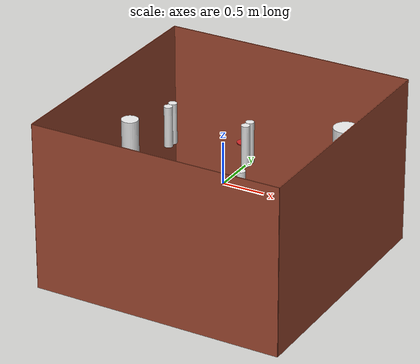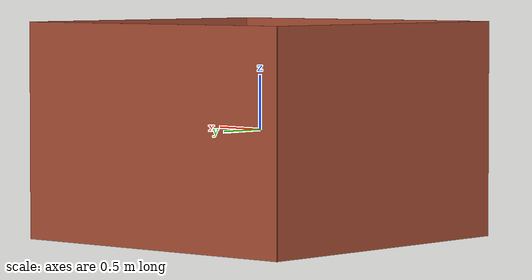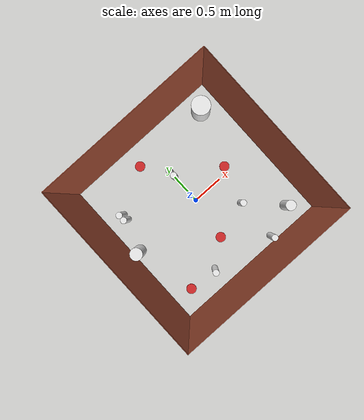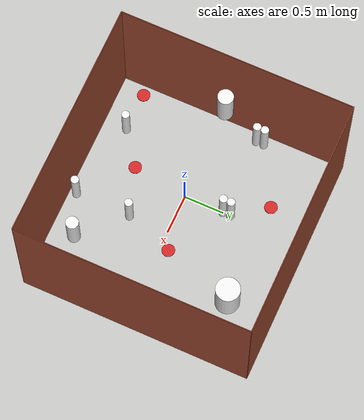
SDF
<sdf version='1.5'>
    <!-- 10 obstacles version -->
    <model name='ros_symbol'>
      <static>1</static>
      <link name='symbol'>
      	<visual name='goal_1'>
          <pose>0.7 0.1 0 0 0 0</pose>
          <geometry>
            <cylinder>
              <radius>0.08</radius>
              <length>0.01</length>
            </cylinder>
          </geometry>
          <material>
            <script>
              <uri>file://media/materials/scripts/gazebo.material</uri>
              <name>Gazebo/Red</name>
            </script>
          </material>
        </visual>

        <visual name='goal_2'>
          <pose>-0.1 -0.7 0 0 0 0</pose>
          <geometry>
            <cylinder>
              <radius>0.08</radius>
              <length>0.01</length>
            </cylinder>
          </geometry>
          <material>
            <script>
              <uri>file://media/materials/scripts/gazebo.material</uri>
              <name>Gazebo/Red</name>
            </script>
          </material>
        </visual>

        <visual name='goal_3'>
          <pose>-1 -1 0 0 0 0</pose>
          <geometry>
            <cylinder>
              <radius>0.08</radius>
              <length>0.01</length>
            </cylinder>
          </geometry>
          <material>
            <script>
              <uri>file://media/materials/scripts/gazebo.material</uri>
              <name>Gazebo/Red</name>
            </script>
          </material>
        </visual>

        <visual name='goal_4'>
          <pose>-0.3 1 0 0 0 0</pose>
          <geometry>
            <cylinder>
              <radius>0.08</radius>
              <length>0.01</length>
            </cylinder>
          </geometry>
          <material>
            <script>
              <uri>file://media/materials/scripts/gazebo.material</uri>
              <name>Gazebo/Red</name>
            </script>
          </material>
        </visual>

        <collision name='obs_1'>
          <pose>0.5 -0.5 0.25 0 0 0</pose>
          <geometry>
            <cylinder>
              <radius>0.05</radius>
              <length>0.5</length>
            </cylinder>
          </geometry>
          <max_contacts>10</max_contacts>
          <surface>
            <bounce/>
            <friction>
              <ode/>
            </friction>
            <contact>
              <ode/>
            </contact>
          </surface>
        </collision>

        <visual name='obs_1'>
          <pose>0.5 -0.5 0.25 0 0 0</pose>
          <geometry>
            <cylinder>
              <radius>0.05</radius>
              <length>0.5</length>
            </cylinder>
          </geometry>
          <material>
            <script>
              <uri>file://media/materials/scripts/gazebo.material</uri>
              <name>Gazebo/White</name>
            </script>
          </material>
        </visual>

        <collision name='obs_2'>
          <pose>0 0.5 0.25 0 0 0</pose>
          <geometry>
            <cylinder>
              <radius>0.05</radius>
              <length>0.5</length>
            </cylinder>
          </geometry>
          <max_contacts>10</max_contacts>
          <surface>
            <bounce/>
            <friction>
              <ode/>
            </friction>
            <contact>
              <ode/>
            </contact>
          </surface>
        </collision>

        <visual name='obs_2'>
          <pose>0 0.5 0.25 0 0 0</pose>
          <geometry>
            <cylinder>
              <radius>0.05</radius>
              <length>0.5</length>
            </cylinder>
          </geometry>
          <material>
            <script>
              <uri>file://media/materials/scripts/gazebo.material</uri>
              <name>Gazebo/White</name>
            </script>
          </material>
        </visual>

        <collision name='obs_3'>
          <pose>-1 0.5 0.25 0 0 0</pose>
          <geometry>
            <cylinder>
              <radius>0.05</radius>
              <length>0.5</length>
            </cylinder>
          </geometry>
          <max_contacts>10</max_contacts>
          <surface>
            <bounce/>
            <friction>
              <ode/>
            </friction>
            <contact>
              <ode/>
            </contact>
          </surface>
        </collision>

        <visual name='obs_3'>
          <pose>-1 0.5 0.25 0 0 0</pose>
          <geometry>
            <cylinder>
              <radius>0.05</radius>
              <length>0.5</length>
            </cylinder>
          </geometry>
          <material>
            <script>
              <uri>file://media/materials/scripts/gazebo.material</uri>
              <name>Gazebo/White</name>
            </script>
          </material>
        </visual>

        <collision name='obs_4'>
          <pose>-0.5 -1 0.25 0 0 0</pose>
          <geometry>
            <cylinder>
              <radius>0.05</radius>
              <length>0.5</length>
            </cylinder>
          </geometry>
          <max_contacts>10</max_contacts>
          <surface>
            <bounce/>
            <friction>
              <ode/>
            </friction>
            <contact>
              <ode/>
            </contact>
          </surface>
        </collision>

        <visual name='obs_4'>
          <pose>-0.5 -1 0.25 0 0 0</pose>
          <geometry>
            <cylinder>
              <radius>0.05</radius>
              <length>0.5</length>
            </cylinder>
          </geometry>
          <material>
            <script>
              <uri>file://media/materials/scripts/gazebo.material</uri>
              <name>Gazebo/White</name>
            </script>
          </material>
        </visual>

        <collision name='obs_5'>
          <pose>1 -1 0.25 0 0 0</pose>
          <geometry>
            <cylinder>
              <radius>0.08</radius>
              <length>0.5</length>
            </cylinder>
          </geometry>
          <max_contacts>10</max_contacts>
          <surface>
            <bounce/>
            <friction>
              <ode/>
            </friction>
            <contact>
              <ode/>
            </contact>
          </surface>
        </collision>

        <visual name='obs_5'>
          <pose>1 -1 0.25 0 0 0</pose>
          <geometry>
            <cylinder>
              <radius>0.08</radius>
              <length>0.5</length>
            </cylinder>
          </geometry>
          <material>
            <script>
              <uri>file://media/materials/scripts/gazebo.material</uri>
              <name>Gazebo/White</name>
            </script>
          </material>
        </visual>

        <collision name='obs_6'>
          <pose>-1 0.6 0.25 0 0 0</pose>
          <geometry>
            <cylinder>
              <radius>0.05</radius>
              <length>0.5</length>
            </cylinder>
          </geometry>
          <max_contacts>10</max_contacts>
          <surface>
            <bounce/>
            <friction>
              <ode/>
            </friction>
            <contact>
              <ode/>
            </contact>
          </surface>
        </collision>

        <visual name='obs_6'>
          <pose>-1 0.6 0.25 0 0 0</pose>
          <geometry>
            <cylinder>
              <radius>0.05</radius>
              <length>0.5</length>
            </cylinder>
          </geometry>
          <material>
            <script>
              <uri>file://media/materials/scripts/gazebo.material</uri>
              <name>Gazebo/White</name>
            </script>
          </material>
        </visual>

        <collision name='obs_7'>
          <pose>1 1 0.25 0 0 0</pose>
          <geometry>
            <cylinder>
              <radius>0.15</radius>
              <length>0.5</length>
            </cylinder>
          </geometry>
          <max_contacts>10</max_contacts>
          <surface>
            <bounce/>
            <friction>
              <ode/>
            </friction>
            <contact>
              <ode/>
            </contact>
          </surface>
        </collision>

        <visual name='obs_7'>
          <pose>1 1 0.25 0 0 0</pose>
          <geometry>
            <cylinder>
              <radius>0.15</radius>
              <length>0.5</length>
            </cylinder>
          </geometry>
          <material>
            <script>
              <uri>file://media/materials/scripts/gazebo.material</uri>
              <name>Gazebo/White</name>
            </script>
          </material>
        </visual>

        <collision name='obs_8'>
          <pose>0 0.6 0.25 0 0 0</pose>
          <geometry>
            <cylinder>
              <radius>0.05</radius>
              <length>0.5</length>
            </cylinder>
          </geometry>
          <max_contacts>10</max_contacts>
          <surface>
            <bounce/>
            <friction>
              <ode/>
            </friction>
            <contact>
              <ode/>
            </contact>
          </surface>
        </collision>

        <visual name='obs_8'>
          <pose>0 0.6 0.25 0 0 0</pose>
          <geometry>
            <cylinder>
              <radius>0.05</radius>
              <length>0.5</length>
            </cylinder>
          </geometry>
          <material>
            <script>
              <uri>file://media/materials/scripts/gazebo.material</uri>
              <name>Gazebo/White</name>
            </script>
          </material>
        </visual>

	<collision name='obs_9'>
          <pose>0.5 -1.2 0.25 0 0 0</pose>
          <geometry>
            <cylinder>
              <radius>0.05</radius>
              <length>0.5</length>
            </cylinder>
          </geometry>
          <max_contacts>10</max_contacts>
          <surface>
            <bounce/>
            <friction>
              <ode/>
            </friction>
            <contact>
              <ode/>
            </contact>
          </surface>
        </collision>

        <visual name='obs_9'>
          <pose>0.5 -1.2 0.25 0 0 0</pose>
          <geometry>
            <cylinder>
              <radius>0.05</radius>
              <length>0.5</length>
            </cylinder>
          </geometry>
          <material>
            <script>
              <uri>file://media/materials/scripts/gazebo.material</uri>
              <name>Gazebo/White</name>
            </script>
          </material>
        </visual>

        <collision name='obs_10'>
          <pose>-1.2 0 0.25 0 0 0</pose>
          <geometry>
            <cylinder>
              <radius>0.1</radius>
              <length>0.5</length>
            </cylinder>
          </geometry>
          <max_contacts>10</max_contacts>
          <surface>
            <bounce/>
            <friction>
              <ode/>
            </friction>
            <contact>
              <ode/>
            </contact>
          </surface>
        </collision>

        <visual name='obs_10'>
          <pose>-1.2 0 0.25 0 0 0</pose>
          <geometry>
            <cylinder>
              <radius>0.1</radius>
              <length>0.5</length>
            </cylinder>
          </geometry>
          <material>
            <script>
              <uri>file://media/materials/scripts/gazebo.material</uri>
              <name>Gazebo/White</name>
            </script>
          </material>
        </visual>

	<!-- Draw Walls -->
      	<collision name="wall_1">
      	<pose>1.5 0 0 0 0 0</pose>
        <geometry>
          <box>
            <size>0.01 3.0 2.0</size>
          </box>
        </geometry>
        <max_contacts>10</max_contacts>
          <surface>
            <bounce/>
            <friction>
              <ode/>
            </friction>
            <contact>
              <ode/>
            </contact>
          </surface>
      </collision>

      <visual name="wall_1">
      <pose>1.5 0 0 0 0 0</pose>
        <geometry>
          <box>
            <size>0.01 3.0 2.0</size>
          </box>
        </geometry>
        <material>
          <script>
            <uri>file://media/materials/scripts/gazebo.material</uri>
            <name>Gazebo/Bricks</name>
          </script>
          <ambient>1 1 1 1</ambient>
          <diffuse>1 1 1 1</diffuse>
          <specular>0.2 0.2 0.2 1</specular>
          <emissive>0 0 0 1</emissive>
        </material>
      </visual>

      <collision name="wall_2">
      	<pose>-1.5 0 0 0 0 0</pose>
        <geometry>
          <box>
            <size>0.01 3.0 2.0</size>
          </box>
        </geometry>
        <max_contacts>10</max_contacts>
          <surface>
            <bounce/>
            <friction>
              <ode/>
            </friction>
            <contact>
              <ode/>
            </contact>
          </surface>
      </collision>

      <visual name="wall_2">
      	<pose>-1.5 0 0 0 0 0</pose>
        <geometry>
          <box>
            <size>0.01 3.0 2.0</size>
          </box>
        </geometry>
        <material>
          <script>
            <uri>file://media/materials/scripts/gazebo.material</uri>
            <name>Gazebo/Bricks</name>
          </script>
          <ambient>1 1 1 1</ambient>
          <diffuse>1 1 1 1</diffuse>
          <specular>0.2 0.2 0.2 1</specular>
          <emissive>0 0 0 1</emissive>
        </material>
      </visual>

      <collision name="wall_3">
      	<pose>0 1.5 0 0 0 0</pose>
        <geometry>
          <box>
            <size>3.0 0.01 2.0</size>
          </box>
        </geometry>
        <max_contacts>10</max_contacts>
          <surface>
            <bounce/>
            <friction>
              <ode/>
            </friction>
            <contact>
              <ode/>
            </contact>
          </surface>
      </collision>

      <visual name="wall_3">
      	<pose>0 1.5 0 0 0 0</pose>
        <geometry>
          <box>
            <size>3.0 0.01 2.0</size>
          </box>
        </geometry>
        <material>
          <script>
            <uri>file://media/materials/scripts/gazebo.material</uri>
            <name>Gazebo/Bricks</name>
          </script>
          <ambient>1 1 1 1</ambient>
          <diffuse>1 1 1 1</diffuse>
          <specular>0.2 0.2 0.2 1</specular>
          <emissive>0 0 0 1</emissive>
        </material>
      </visual>

      <collision name="wall_4">
      	<pose>0 -1.5 0 0 0 0</pose>
        <geometry>
          <box>
            <size>3.0 0.01 2.0</size>
          </box>
        </geometry>
        <max_contacts>10</max_contacts>
          <surface>
            <bounce/>
            <friction>
              <ode/>
            </friction>
            <contact>
              <ode/>
            </contact>
          </surface>
      </collision>

      <visual name="wall_4">
      	<pose>0 -1.5 0 0 0 0</pose>
        <geometry>
          <box>
            <size>3.0 0.01 2.0</size>
          </box>
        </geometry>
        <material>
          <script>
            <uri>file://media/materials/scripts/gazebo.material</uri>
            <name>Gazebo/Bricks</name>
          </script>
          <ambient>1 1 1 1</ambient>
          <diffuse>1 1 1 1</diffuse>
          <specular>0.2 0.2 0.2 1</specular>
          <emissive>0 0 0 1</emissive>
        </material>
      </visual>

    </link>
  </model>
</sdf>
